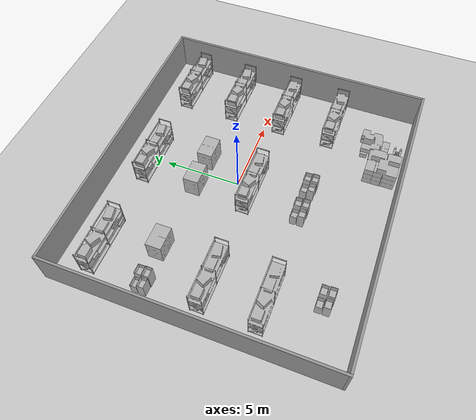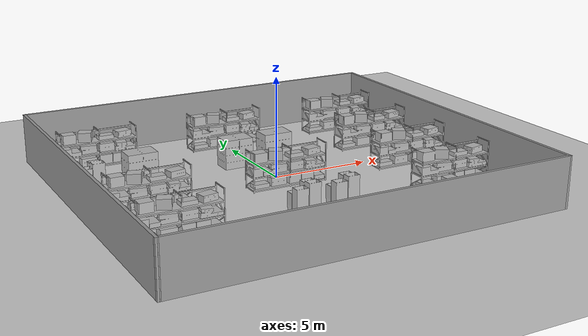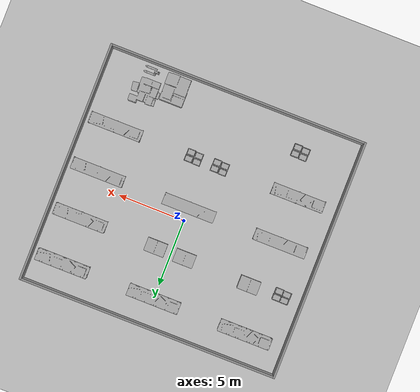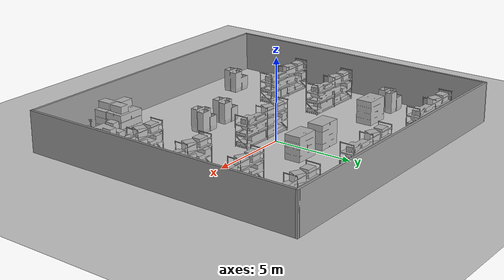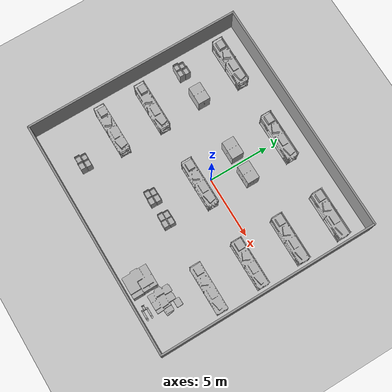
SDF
<sdf version="1.7">
 <world name="default">
  <model name="ground_plane">
   <static>1</static>
   <link name="link">
    <collision name="collision">
     <geometry><plane><normal>0 0 1</normal><size>100 100</size></plane></geometry>
     <surface><friction><ode><mu>100</mu><mu2>50</mu2></ode></friction></surface>
    </collision>
    <visual name="visual">
     <cast_shadows>0</cast_shadows>
     <geometry><plane><normal>0 0 1</normal><size>100 100</size></plane></geometry>
     <material>
      <script><uri>file://media/materials/scripts/gazebo.material</uri><name>Gazebo/Grey</name></script>
     </material>
    </visual>
   </link>
  </model>
  <model name="aws_robomaker_warehouse_ShelfD_01">
   <link name="link">
    <inertial>
     <mass>30</mass>
     <inertia><ixx>907.144</ixx><ixy>0</ixy><ixz>0</ixz><iyy>104.95</iyy><iyz>0</iyz><izz>824.248</izz></inertia>
    </inertial>
    <collision name="collision">
     <geometry>
      <mesh>
       <uri>model://sim_env/models/aws_robomaker_warehouse_ShelfD_01/meshes/aws_robomaker_warehouse_ShelfD_01_collision.DAE</uri>
       <scale>1 1 1</scale>
      </mesh>
     </geometry>
     <surface>
      <friction><ode><mu>0.2</mu><mu2>0.2</mu2><fdir1>0 0 0</fdir1><slip1>0</slip1><slip2>0</slip2></ode></friction>
     </surface>
    </collision>
    <visual name="visual">
     <geometry>
      <mesh>
       <uri>model://sim_env/models/aws_robomaker_warehouse_ShelfD_01/meshes/aws_robomaker_warehouse_ShelfD_01_visual.DAE</uri>
      </mesh>
     </geometry>
     <meta><layer>1</layer></meta>
    </visual>
   </link>
   <static>1</static>
   <pose>-7 6 -0.7 0 -0 0</pose>
  </model>
  <model name="aws_robomaker_warehouse_ShelfD_01_clone">
   <link name="link">
    <inertial>
     <mass>30</mass>
     <inertia><ixx>907.144</ixx><ixy>0</ixy><ixz>0</ixz><iyy>104.95</iyy><iyz>0</iyz><izz>824.248</izz></inertia>
    </inertial>
    <collision name="collision">
     <geometry>
      <mesh>
       <uri>model://sim_env/models/aws_robomaker_warehouse_ShelfD_01/meshes/aws_robomaker_warehouse_ShelfD_01_collision.DAE</uri>
       <scale>1 1 1</scale>
      </mesh>
     </geometry>
     <surface>
      <friction><ode><mu>0.2</mu><mu2>0.2</mu2><fdir1>0 0 0</fdir1><slip1>0</slip1><slip2>0</slip2></ode></friction>
     </surface>
    </collision>
    <visual name="visual">
     <geometry>
      <mesh>
       <uri>model://sim_env/models/aws_robomaker_warehouse_ShelfD_01/meshes/aws_robomaker_warehouse_ShelfD_01_visual.DAE</uri>
      </mesh>
     </geometry>
     <meta><layer>1</layer></meta>
    </visual>
   </link>
   <static>1</static>
   <pose>0 6 -0.7 0 -0 0</pose>
  </model>
  <model name="aws_robomaker_warehouse_ShelfD_01_clone_clone">
   <link name="link">
    <inertial>
     <mass>30</mass>
     <inertia><ixx>907.144</ixx><ixy>0</ixy><ixz>0</ixz><iyy>104.95</iyy><iyz>0</iyz><izz>824.248</izz></inertia>
    </inertial>
    <collision name="collision">
     <geometry>
      <mesh>
       <uri>model://sim_env/models/aws_robomaker_warehouse_ShelfD_01/meshes/aws_robomaker_warehouse_ShelfD_01_collision.DAE</uri>
       <scale>1 1 1</scale>
      </mesh>
     </geometry>
     <surface>
      <friction><ode><mu>0.2</mu><mu2>0.2</mu2><fdir1>0 0 0</fdir1><slip1>0</slip1><slip2>0</slip2></ode></friction>
     </surface>
    </collision>
    <visual name="visual">
     <geometry>
      <mesh>
       <uri>model://sim_env/models/aws_robomaker_warehouse_ShelfD_01/meshes/aws_robomaker_warehouse_ShelfD_01_visual.DAE</uri>
      </mesh>
     </geometry>
     <meta><layer>1</layer></meta>
    </visual>
   </link>
   <static>1</static>
   <pose>7 6 -0.7 0 -0 0</pose>
  </model>
  <model name="aws_robomaker_warehouse_ShelfD_01_clone_0">
   <link name="link">
    <inertial>
     <mass>30</mass>
     <inertia><ixx>907.144</ixx><ixy>0</ixy><ixz>0</ixz><iyy>104.95</iyy><iyz>0</iyz><izz>824.248</izz></inertia>
    </inertial>
    <collision name="collision">
     <geometry>
      <mesh>
       <uri>model://sim_env/models/aws_robomaker_warehouse_ShelfD_01/meshes/aws_robomaker_warehouse_ShelfD_01_collision.DAE</uri>
       <scale>1 1 1</scale>
      </mesh>
     </geometry>
     <surface>
      <friction><ode><mu>0.2</mu><mu2>0.2</mu2><fdir1>0 0 0</fdir1><slip1>0</slip1><slip2>0</slip2></ode></friction>
     </surface>
    </collision>
    <visual name="visual">
     <geometry>
      <mesh>
       <uri>model://sim_env/models/aws_robomaker_warehouse_ShelfD_01/meshes/aws_robomaker_warehouse_ShelfD_01_visual.DAE</uri>
      </mesh>
     </geometry>
     <meta><layer>1</layer></meta>
    </visual>
   </link>
   <static>1</static>
   <pose>7 2.5 -0.7 0 -0 0</pose>
  </model>
  <model name="aws_robomaker_warehouse_ShelfD_01_clone_0_clone">
   <link name="link">
    <inertial>
     <mass>30</mass>
     <inertia><ixx>907.144</ixx><ixy>0</ixy><ixz>0</ixz><iyy>104.95</iyy><iyz>0</iyz><izz>824.248</izz></inertia>
    </inertial>
    <collision name="collision">
     <geometry>
      <mesh>
       <uri>model://sim_env/models/aws_robomaker_warehouse_ShelfD_01/meshes/aws_robomaker_warehouse_ShelfD_01_collision.DAE</uri>
       <scale>1 1 1</scale>
      </mesh>
     </geometry>
     <surface>
      <friction><ode><mu>0.2</mu><mu2>0.2</mu2><fdir1>0 0 0</fdir1><slip1>0</slip1><slip2>0</slip2></ode></friction>
     </surface>
    </collision>
    <visual name="visual">
     <geometry>
      <mesh>
       <uri>model://sim_env/models/aws_robomaker_warehouse_ShelfD_01/meshes/aws_robomaker_warehouse_ShelfD_01_visual.DAE</uri>
      </mesh>
     </geometry>
     <meta><layer>1</layer></meta>
    </visual>
   </link>
   <static>1</static>
   <pose>7 -1 -0.7 0 -0 0</pose>
  </model>
  <model name="aws_robomaker_warehouse_ShelfD_01_clone_0_clone_0">
   <link name="link">
    <inertial>
     <mass>30</mass>
     <inertia><ixx>907.144</ixx><ixy>0</ixy><ixz>0</ixz><iyy>104.95</iyy><iyz>0</iyz><izz>824.248</izz></inertia>
    </inertial>
    <collision name="collision">
     <geometry>
      <mesh>
       <uri>model://sim_env/models/aws_robomaker_warehouse_ShelfD_01/meshes/aws_robomaker_warehouse_ShelfD_01_collision.DAE</uri>
       <scale>1 1 1</scale>
      </mesh>
     </geometry>
     <surface>
      <friction><ode><mu>0.2</mu><mu2>0.2</mu2><fdir1>0 0 0</fdir1><slip1>0</slip1><slip2>0</slip2></ode></friction>
     </surface>
    </collision>
    <visual name="visual">
     <geometry>
      <mesh>
       <uri>model://sim_env/models/aws_robomaker_warehouse_ShelfD_01/meshes/aws_robomaker_warehouse_ShelfD_01_visual.DAE</uri>
      </mesh>
     </geometry>
     <meta><layer>1</layer></meta>
    </visual>
   </link>
   <static>1</static>
   <pose>7 -4.5 -0.7 0 -0 0</pose>
  </model>
  <model name="aws_robomaker_warehouse_ShelfD_01_clone_0_clone_0_clone">
   <link name="link">
    <inertial>
     <mass>30</mass>
     <inertia><ixx>907.144</ixx><ixy>0</ixy><ixz>0</ixz><iyy>104.95</iyy><iyz>0</iyz><izz>824.248</izz></inertia>
    </inertial>
    <collision name="collision">
     <geometry>
      <mesh>
       <uri>model://sim_env/models/aws_robomaker_warehouse_ShelfD_01/meshes/aws_robomaker_warehouse_ShelfD_01_collision.DAE</uri>
       <scale>1 1 1</scale>
      </mesh>
     </geometry>
     <surface>
      <friction><ode><mu>0.2</mu><mu2>0.2</mu2><fdir1>0 0 0</fdir1><slip1>0</slip1><slip2>0</slip2></ode></friction>
     </surface>
    </collision>
    <visual name="visual">
     <geometry>
      <mesh>
       <uri>model://sim_env/models/aws_robomaker_warehouse_ShelfD_01/meshes/aws_robomaker_warehouse_ShelfD_01_visual.DAE</uri>
      </mesh>
     </geometry>
     <meta><layer>1</layer></meta>
    </visual>
   </link>
   <static>1</static>
   <pose>0 -1 -0.7 0 -0 0</pose>
  </model>
  <model name="aws_robomaker_warehouse_ShelfD_01_clone_0_clone_0_clone_0">
   <link name="link">
    <inertial>
     <mass>30</mass>
     <inertia><ixx>907.144</ixx><ixy>0</ixy><ixz>0</ixz><iyy>104.95</iyy><iyz>0</iyz><izz>824.248</izz></inertia>
    </inertial>
    <collision name="collision">
     <geometry>
      <mesh>
       <uri>model://sim_env/models/aws_robomaker_warehouse_ShelfD_01/meshes/aws_robomaker_warehouse_ShelfD_01_collision.DAE</uri>
       <scale>1 1 1</scale>
      </mesh>
     </geometry>
     <surface>
      <friction><ode><mu>0.2</mu><mu2>0.2</mu2><fdir1>0 0 0</fdir1><slip1>0</slip1><slip2>0</slip2></ode></friction>
     </surface>
    </collision>
    <visual name="visual">
     <geometry>
      <mesh>
       <uri>model://sim_env/models/aws_robomaker_warehouse_ShelfD_01/meshes/aws_robomaker_warehouse_ShelfD_01_visual.DAE</uri>
      </mesh>
     </geometry>
     <meta><layer>1</layer></meta>
    </visual>
   </link>
   <static>1</static>
   <pose>-7 -1 -0.7 0 -0 0</pose>
  </model>
  <model name="aws_robomaker_warehouse_ShelfD_01_clone_0_clone_0_clone_1">
   <link name="link">
    <inertial>
     <mass>30</mass>
     <inertia><ixx>907.144</ixx><ixy>0</ixy><ixz>0</ixz><iyy>104.95</iyy><iyz>0</iyz><izz>824.248</izz></inertia>
    </inertial>
    <collision name="collision">
     <geometry>
      <mesh>
       <uri>model://sim_env/models/aws_robomaker_warehouse_ShelfD_01/meshes/aws_robomaker_warehouse_ShelfD_01_collision.DAE</uri>
       <scale>1 1 1</scale>
      </mesh>
     </geometry>
     <surface>
      <friction><ode><mu>0.2</mu><mu2>0.2</mu2><fdir1>0 0 0</fdir1><slip1>0</slip1><slip2>0</slip2></ode></friction>
     </surface>
    </collision>
    <visual name="visual">
     <geometry>
      <mesh>
       <uri>model://sim_env/models/aws_robomaker_warehouse_ShelfD_01/meshes/aws_robomaker_warehouse_ShelfD_01_visual.DAE</uri>
      </mesh>
     </geometry>
     <meta><layer>1</layer></meta>
    </visual>
   </link>
   <static>1</static>
   <pose>-7 -4.5 -0.7 0 -0 0</pose>
  </model>
  <model name="aws_robomaker_warehouse_Bucket_01">
   <link name="body">
    <inertial>
     <mass>2</mass>
     <inertia><ixx>0.57</ixx><ixy>0</ixy><ixz>0</ixz><iyy>0.474</iyy><iyz>0</iyz><izz>0.391</izz></inertia>
    </inertial>
    <visual name="visual">
     <geometry>
      <mesh>
       <uri>model://sim_env/models/aws_robomaker_warehouse_Bucket_01/meshes/aws_robomaker_warehouse_Bucket_01_visual.DAE</uri>
      </mesh>
     </geometry>
     <meta><layer>1</layer></meta>
    </visual>
    <collision name="collision_0">
     <geometry>
      <mesh>
       <uri>model://sim_env/models/aws_robomaker_warehouse_Bucket_01/meshes/aws_robomaker_warehouse_Bucket_01_collision.DAE</uri>
       <scale>1 1 1</scale>
      </mesh>
     </geometry>
     <surface>
      <friction>
       <ode><mu>0.4</mu><mu2>0.4</mu2><fdir1>0 0 0</fdir1><slip1>0</slip1><slip2>0</slip2></ode>
       <torsional>
        <coefficient>1</coefficient>
        <patch_radius>0</patch_radius>
        <surface_radius>0</surface_radius>
        <use_patch_radius>1</use_patch_radius>
        <ode><slip>0</slip></ode>
       </torsional>
      </friction>
     </surface>
    </collision>
   </link>
   <static>1</static>
   <pose>-8.5 2.5 0 0 -0 1.57</pose>
  </model>
  <model name="aws_robomaker_warehouse_ClutteringD_01">
   <link name="link">
    <inertial>
     <mass>1</mass>
     <inertia><ixx>1.558</ixx><ixy>0</ixy><ixz>0</ixz><iyy>1.821</iyy><iyz>0</iyz><izz>1.892</izz></inertia>
    </inertial>
    <collision name="collision">
     <geometry>
      <mesh>
       <uri>model://sim_env/models/aws_robomaker_warehouse_ClutteringD_01/meshes/aws_robomaker_warehouse_ClutteringD_01_collision.DAE</uri>
       <scale>1 1 1</scale>
      </mesh>
     </geometry>
     <surface>
      <friction>
       <ode><mu>0.6</mu><mu2>0.6</mu2><fdir1>0 0 0</fdir1><slip1>0</slip1><slip2>0</slip2></ode>
       <torsional>
        <coefficient>1</coefficient>
        <patch_radius>0</patch_radius>
        <surface_radius>0</surface_radius>
        <use_patch_radius>1</use_patch_radius>
        <ode><slip>0</slip></ode>
       </torsional>
      </friction>
     </surface>
    </collision>
    <visual name="visual">
     <geometry>
      <mesh>
       <uri>model://sim_env/models/aws_robomaker_warehouse_ClutteringD_01/meshes/aws_robomaker_warehouse_ClutteringD_01_visual.DAE</uri>
      </mesh>
     </geometry>
     <meta><layer>1</layer></meta>
    </visual>
   </link>
   <static>1</static>
   <pose>-6 2.6 -0.3 0 -0 1.57</pose>
  </model>
  <model name="aws_robomaker_warehouse_ClutteringD_01_clone">
   <link name="link">
    <inertial>
     <mass>1</mass>
     <inertia><ixx>1.558</ixx><ixy>0</ixy><ixz>0</ixz><iyy>1.821</iyy><iyz>0</iyz><izz>1.892</izz></inertia>
    </inertial>
    <collision name="collision">
     <geometry>
      <mesh>
       <uri>model://sim_env/models/aws_robomaker_warehouse_ClutteringD_01/meshes/aws_robomaker_warehouse_ClutteringD_01_collision.DAE</uri>
       <scale>1 1 1</scale>
      </mesh>
     </geometry>
     <surface>
      <friction>
       <ode><mu>0.6</mu><mu2>0.6</mu2><fdir1>0 0 0</fdir1><slip1>0</slip1><slip2>0</slip2></ode>
       <torsional>
        <coefficient>1</coefficient>
        <patch_radius>0</patch_radius>
        <surface_radius>0</surface_radius>
        <use_patch_radius>1</use_patch_radius>
        <ode><slip>0</slip></ode>
       </torsional>
      </friction>
     </surface>
    </collision>
    <visual name="visual">
     <geometry>
      <mesh>
       <uri>model://sim_env/models/aws_robomaker_warehouse_ClutteringD_01/meshes/aws_robomaker_warehouse_ClutteringD_01_visual.DAE</uri>
      </mesh>
     </geometry>
     <meta><layer>1</layer></meta>
    </visual>
   </link>
   <static>1</static>
   <pose>-1 2.5 -0.3 0 -0 1.57</pose>
  </model>
  <model name="aws_robomaker_warehouse_ClutteringD_01_clone_0">
   <link name="link">
    <inertial>
     <mass>1</mass>
     <inertia><ixx>1.558</ixx><ixy>0</ixy><ixz>0</ixz><iyy>1.821</iyy><iyz>0</iyz><izz>1.892</izz></inertia>
    </inertial>
    <collision name="collision">
     <geometry>
      <mesh>
       <uri>model://sim_env/models/aws_robomaker_warehouse_ClutteringD_01/meshes/aws_robomaker_warehouse_ClutteringD_01_collision.DAE</uri>
       <scale>1 1 1</scale>
      </mesh>
     </geometry>
     <surface>
      <friction>
       <ode><mu>0.6</mu><mu2>0.6</mu2><fdir1>0 0 0</fdir1><slip1>0</slip1><slip2>0</slip2></ode>
       <torsional>
        <coefficient>1</coefficient>
        <patch_radius>0</patch_radius>
        <surface_radius>0</surface_radius>
        <use_patch_radius>1</use_patch_radius>
        <ode><slip>0</slip></ode>
       </torsional>
      </friction>
     </surface>
    </collision>
    <visual name="visual">
     <geometry>
      <mesh>
       <uri>model://sim_env/models/aws_robomaker_warehouse_ClutteringD_01/meshes/aws_robomaker_warehouse_ClutteringD_01_visual.DAE</uri>
      </mesh>
     </geometry>
     <meta><layer>1</layer></meta>
    </visual>
   </link>
   <static>1</static>
   <pose>1.2 2.5 -0.3 0 -0 1.57</pose>
  </model>
  <model name="aws_robomaker_warehouse_Bucket_01_clone">
   <link name="body">
    <inertial>
     <mass>2</mass>
     <inertia><ixx>0.57</ixx><ixy>0</ixy><ixz>0</ixz><iyy>0.474</iyy><iyz>0</iyz><izz>0.391</izz></inertia>
    </inertial>
    <visual name="visual">
     <geometry>
      <mesh>
       <uri>model://sim_env/models/aws_robomaker_warehouse_Bucket_01/meshes/aws_robomaker_warehouse_Bucket_01_visual.DAE</uri>
      </mesh>
     </geometry>
     <meta><layer>1</layer></meta>
    </visual>
    <collision name="collision_0">
     <geometry>
      <mesh>
       <uri>model://sim_env/models/aws_robomaker_warehouse_Bucket_01/meshes/aws_robomaker_warehouse_Bucket_01_collision.DAE</uri>
       <scale>1 1 1</scale>
      </mesh>
     </geometry>
     <surface>
      <friction>
       <ode><mu>0.4</mu><mu2>0.4</mu2><fdir1>0 0 0</fdir1><slip1>0</slip1><slip2>0</slip2></ode>
       <torsional>
        <coefficient>1</coefficient>
        <patch_radius>0</patch_radius>
        <surface_radius>0</surface_radius>
        <use_patch_radius>1</use_patch_radius>
        <ode><slip>0</slip></ode>
       </torsional>
      </friction>
     </surface>
    </collision>
   </link>
   <static>1</static>
   <pose>-1 -4.5 0 0 -0 1.57</pose>
  </model>
  <model name="aws_robomaker_warehouse_Bucket_01_clone_0">
   <link name="body">
    <inertial>
     <mass>2</mass>
     <inertia><ixx>0.57</ixx><ixy>0</ixy><ixz>0</ixz><iyy>0.474</iyy><iyz>0</iyz><izz>0.391</izz></inertia>
    </inertial>
    <visual name="visual">
     <geometry>
      <mesh>
       <uri>model://sim_env/models/aws_robomaker_warehouse_Bucket_01/meshes/aws_robomaker_warehouse_Bucket_01_visual.DAE</uri>
      </mesh>
     </geometry>
     <meta><layer>1</layer></meta>
    </visual>
    <collision name="collision_0">
     <geometry>
      <mesh>
       <uri>model://sim_env/models/aws_robomaker_warehouse_Bucket_01/meshes/aws_robomaker_warehouse_Bucket_01_collision.DAE</uri>
       <scale>1 1 1</scale>
      </mesh>
     </geometry>
     <surface>
      <friction>
       <ode><mu>0.4</mu><mu2>0.4</mu2><fdir1>0 0 0</fdir1><slip1>0</slip1><slip2>0</slip2></ode>
       <torsional>
        <coefficient>1</coefficient>
        <patch_radius>0</patch_radius>
        <surface_radius>0</surface_radius>
        <use_patch_radius>1</use_patch_radius>
        <ode><slip>0</slip></ode>
       </torsional>
      </friction>
     </surface>
    </collision>
   </link>
   <static>1</static>
   <pose>1 -4.5 0 0 -0 1.57</pose>
  </model>
  <model name="aws_robomaker_warehouse_ClutteringC_01">
   <link name="link">
    <inertial>
     <mass>1</mass>
     <inertia><ixx>1.558</ixx><ixy>0</ixy><ixz>0</ixz><iyy>1.821</iyy><iyz>0</iyz><izz>1.892</izz></inertia>
    </inertial>
    <collision name="collision">
     <geometry>
      <mesh>
       <uri>model://sim_env/models/aws_robomaker_warehouse_ClutteringC_01/meshes/aws_robomaker_warehouse_ClutteringC_01_collision.DAE</uri>
       <scale>1 1 1</scale>
      </mesh>
     </geometry>
     <surface>
      <friction>
       <ode><mu>0.6</mu><mu2>0.6</mu2><fdir1>0 0 0</fdir1><slip1>0</slip1><slip2>0</slip2></ode>
       <torsional>
        <coefficient>1</coefficient>
        <patch_radius>0</patch_radius>
        <surface_radius>0</surface_radius>
        <use_patch_radius>1</use_patch_radius>
        <ode><slip>0</slip></ode>
       </torsional>
      </friction>
     </surface>
    </collision>
    <visual name="visual">
     <geometry>
      <mesh>
       <uri>model://sim_env/models/aws_robomaker_warehouse_ClutteringC_01/meshes/aws_robomaker_warehouse_ClutteringC_01_visual.DAE</uri>
      </mesh>
     </geometry>
     <meta><layer>1</layer></meta>
    </visual>
   </link>
   <static>1</static>
   <pose>4 -8.5 0 0 -0 0</pose>
  </model>
  <model name="aws_robomaker_warehouse_ClutteringA_01">
   <link name="link">
    <inertial>
     <mass>2</mass>
     <inertia><ixx>0.841</ixx><ixy>0</ixy><ixz>0</ixz><iyy>0.954</iyy><iyz>0</iyz><izz>1.422</izz></inertia>
    </inertial>
    <collision name="collision">
     <geometry>
      <mesh>
       <uri>model://sim_env/models/aws_robomaker_warehouse_ClutteringA_01/meshes/aws_robomaker_warehouse_ClutteringA_01_collision.DAE</uri>
       <scale>1 1 1</scale>
      </mesh>
     </geometry>
     <surface>
      <friction>
       <ode><mu>0.6</mu><mu2>0.6</mu2><fdir1>0 0 0</fdir1><slip1>0</slip1><slip2>0</slip2></ode>
       <torsional>
        <coefficient>1</coefficient>
        <patch_radius>0</patch_radius>
        <surface_radius>0</surface_radius>
        <use_patch_radius>1</use_patch_radius>
        <ode><slip>0</slip></ode>
       </torsional>
      </friction>
     </surface>
    </collision>
    <visual name="visual">
     <geometry>
      <mesh>
       <uri>model://sim_env/models/aws_robomaker_warehouse_ClutteringA_01/meshes/aws_robomaker_warehouse_ClutteringA_01_visual.DAE</uri>
      </mesh>
     </geometry>
     <meta><layer>1</layer></meta>
    </visual>
   </link>
   <static>1</static>
   <pose>6 -7.6 0 0 -0 0</pose>
  </model>
  <model name="aws_robomaker_warehouse_PalletJackB_01">
   <link name="link">
    <inertial>
     <mass>2</mass>
     <inertia><ixx>0.277</ixx><ixy>0</ixy><ixz>0</ixz><iyy>0.452</iyy><iyz>0</iyz><izz>0.268</izz></inertia>
    </inertial>
    <collision name="collision">
     <geometry>
      <mesh>
       <uri>model://sim_env/models/aws_robomaker_warehouse_PalletJackB_01/meshes/aws_robomaker_warehouse_PalletJackB_01_collision.DAE</uri>
       <scale>1 1 1</scale>
      </mesh>
     </geometry>
     <surface>
      <friction><ode><mu>0.2</mu><mu2>0.2</mu2><fdir1>0 0 0</fdir1><slip1>0</slip1><slip2>0</slip2></ode></friction>
     </surface>
    </collision>
    <visual name="visual">
     <geometry>
      <mesh>
       <uri>model://sim_env/models/aws_robomaker_warehouse_PalletJackB_01/meshes/aws_robomaker_warehouse_PalletJackB_01_visual.DAE</uri>
      </mesh>
     </geometry>
     <meta><layer>1</layer></meta>
    </visual>
   </link>
   <static>1</static>
   <pose>6 -9.2 0 0 -0 0</pose>
  </model>
  <model name="aws_robomaker_warehouse_Bucket_01_0">
   <link name="body">
    <inertial>
     <mass>2</mass>
     <inertia><ixx>0.57</ixx><ixy>0</ixy><ixz>0</ixz><iyy>0.474</iyy><iyz>0</iyz><izz>0.391</izz></inertia>
    </inertial>
    <visual name="visual">
     <geometry>
      <mesh>
       <uri>model://sim_env/models/aws_robomaker_warehouse_Bucket_01/meshes/aws_robomaker_warehouse_Bucket_01_visual.DAE</uri>
      </mesh>
     </geometry>
     <meta><layer>1</layer></meta>
    </visual>
    <collision name="collision_0">
     <geometry>
      <mesh>
       <uri>model://sim_env/models/aws_robomaker_warehouse_Bucket_01/meshes/aws_robomaker_warehouse_Bucket_01_collision.DAE</uri>
       <scale>1 1 1</scale>
      </mesh>
     </geometry>
     <surface>
      <friction>
       <ode><mu>0.4</mu><mu2>0.4</mu2><fdir1>0 0 0</fdir1><slip1>0</slip1><slip2>0</slip2></ode>
       <torsional>
        <coefficient>1</coefficient>
        <patch_radius>0</patch_radius>
        <surface_radius>0</surface_radius>
        <use_patch_radius>1</use_patch_radius>
        <ode><slip>0</slip></ode>
       </torsional>
      </friction>
     </surface>
    </collision>
   </link>
   <static>1</static>
   <pose>-6 -7.6 0 0 -0 1.57</pose>
  </model>
  <model name="Untitled">
   <pose>-0.325001 -0.875178 0 0 -0 0</pose>
   <link name="Wall_10">
    <collision name="Wall_10_Collision">
     <geometry><box><size>18 0.15 2.5</size></box></geometry>
     <pose>0 0 1.25 0 -0 0</pose>
    </collision>
    <visual name="Wall_10_Visual">
     <pose>0 0 1.25 0 -0 0</pose>
     <geometry><box><size>18 0.15 2.5</size></box></geometry>
     <material>
      <script><uri>file://media/materials/scripts/gazebo.material</uri><name>Gazebo/Grey</name></script>
      <ambient>1 1 1 1</ambient>
     </material>
     <meta><layer>0</layer></meta>
    </visual>
    <pose>9.675 0.001322 0 0 -0 1.5708</pose>
   </link>
   <link name="Wall_12">
    <collision name="Wall_12_Collision">
     <geometry><box><size>18 0.15 2.5</size></box></geometry>
     <pose>0 0 1.25 0 -0 0</pose>
    </collision>
    <visual name="Wall_12_Visual">
     <pose>0 0 1.25 0 -0 0</pose>
     <geometry><box><size>18 0.15 2.5</size></box></geometry>
     <material>
      <script><uri>file://media/materials/scripts/gazebo.material</uri><name>Gazebo/Grey</name></script>
      <ambient>1 1 1 1</ambient>
     </material>
     <meta><layer>0</layer></meta>
    </visual>
    <pose>-9.675 -0.001322 0 0 -0 1.5708</pose>
   </link>
   <link name="Wall_14">
    <collision name="Wall_14_Collision">
     <geometry><box><size>19.5 0.15 2.5</size></box></geometry>
     <pose>0 0 1.25 0 -0 0</pose>
    </collision>
    <visual name="Wall_14_Visual">
     <pose>0 0 1.25 0 -0 0</pose>
     <geometry><box><size>19.5 0.15 2.5</size></box></geometry>
     <material>
      <script><uri>file://media/materials/scripts/gazebo.material</uri><name>Gazebo/Grey</name></script>
      <ambient>1 1 1 1</ambient>
     </material>
     <meta><layer>0</layer></meta>
    </visual>
    <pose>-0 8.925 0 0 -0 0.000137</pose>
   </link>
   <link name="Wall_8">
    <collision name="Wall_8_Collision">
     <geometry><box><size>19.5 0.15 2.5</size></box></geometry>
     <pose>0 0 1.25 0 -0 0</pose>
    </collision>
    <visual name="Wall_8_Visual">
     <pose>0 0 1.25 0 -0 0</pose>
     <geometry><box><size>19.5 0.15 2.5</size></box></geometry>
     <material>
      <script><uri>file://media/materials/scripts/gazebo.material</uri><name>Gazebo/Grey</name></script>
      <ambient>1 1 1 1</ambient>
     </material>
     <meta><layer>0</layer></meta>
    </visual>
    <pose>-0 -8.925 0 0 -0 0.000137</pose>
   </link>
   <static>1</static>
  </model>
 </world>
</sdf>
